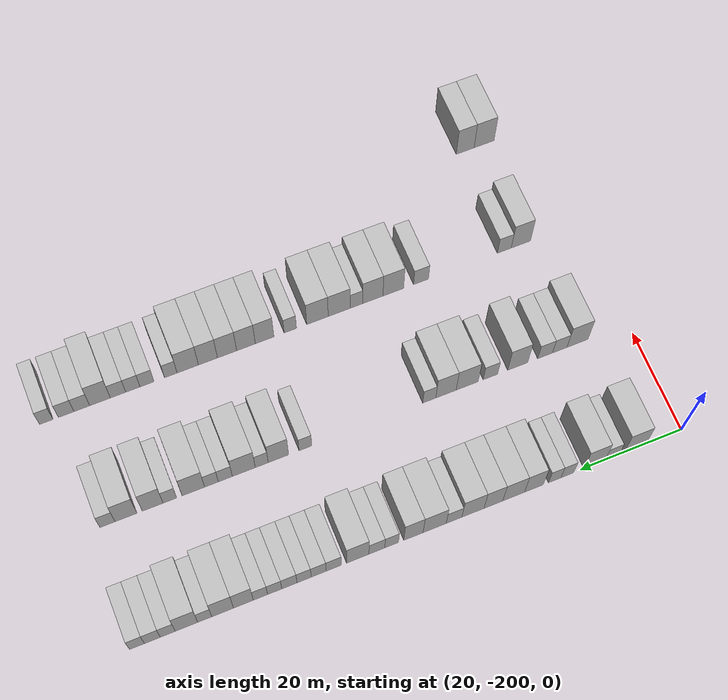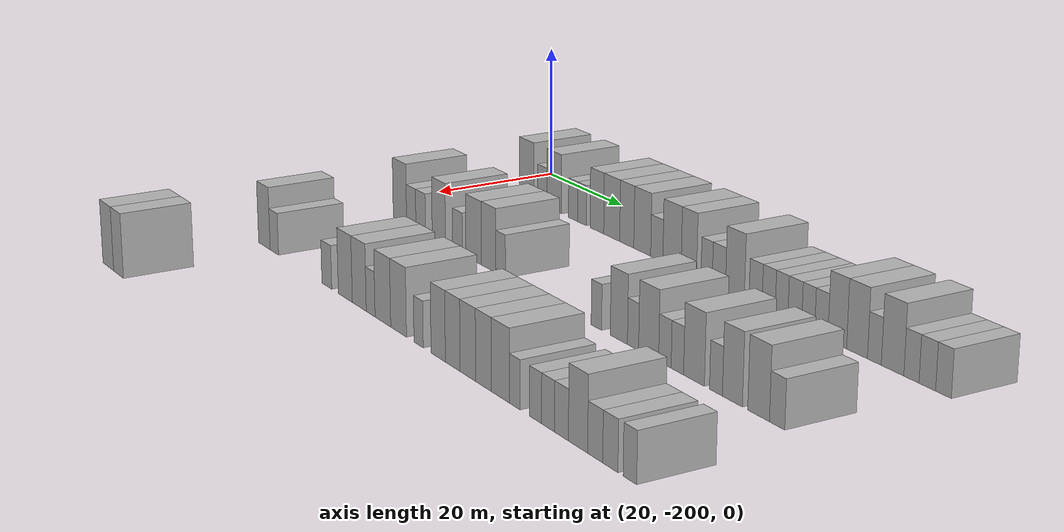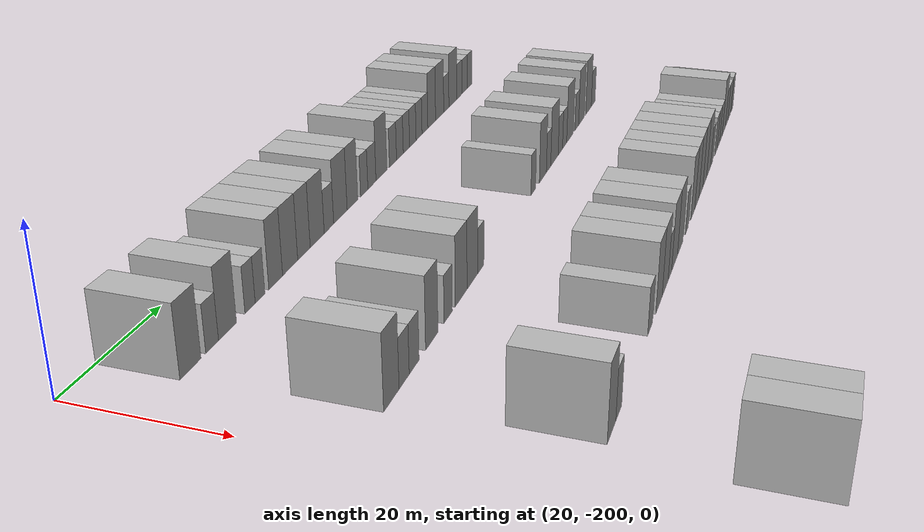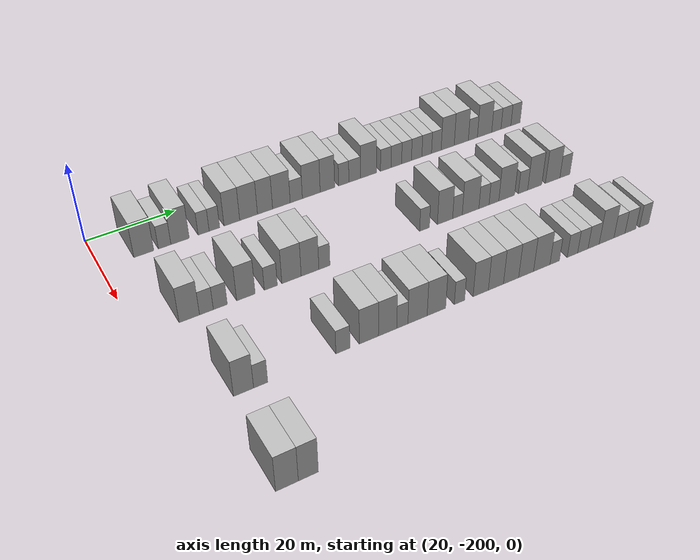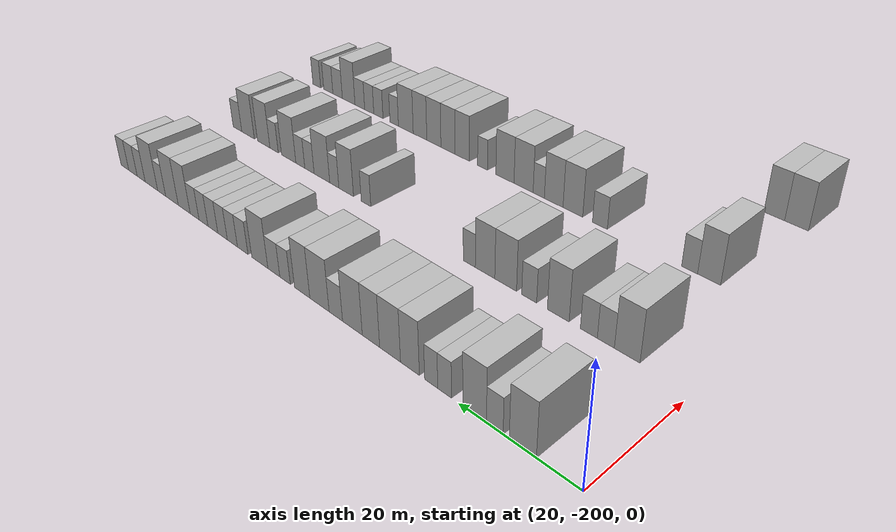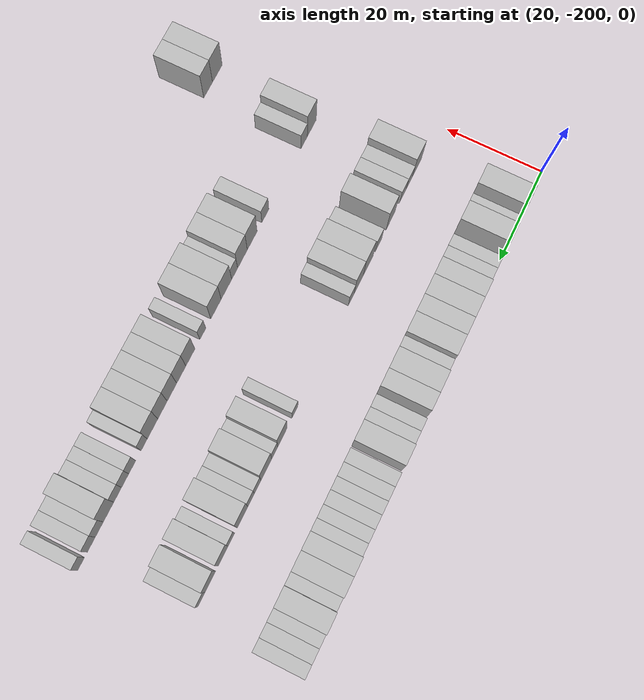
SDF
<sdf version="1.6">
 <world name="default">
  <model name="building_47">
   <static>1</static>
   <pose>25.0000 -190.7370 0 0.000000 0.000000 0.000000</pose>
   <link name="link">
    <pose>0 0 4.50 0 0 0</pose>
    <collision name="collision"><geometry><box><size>10.0000 4.3282 9.0000</size></box></geometry></collision>
    <visual name="visual">
     <cast_shadows>0</cast_shadows>
     <geometry><box><size>10.0000 4.3282 9.0000</size></box></geometry>
     <material>
      <script>
       <uri>model://HANNAS_wall/materials/scripts</uri>
       <uri>model://HANNAS_wall/materials/textures</uri>
       <name>vrc/HANNAS_wall</name>
      </script>
     </material>
    </visual>
   </link>
  </model>
  <model name="building_48">
   <static>1</static>
   <pose>25.0000 -186.1845 0 0.000000 0.000000 0.000000</pose>
   <link name="link">
    <pose>0 0 3.00 0 0 0</pose>
    <collision name="collision"><geometry><box><size>10.0000 2.7769 6.0000</size></box></geometry></collision>
    <visual name="visual">
     <cast_shadows>0</cast_shadows>
     <geometry><box><size>10.0000 2.7769 6.0000</size></box></geometry>
     <material>
      <script>
       <uri>model://HANNAS_wall/materials/scripts</uri>
       <uri>model://HANNAS_wall/materials/textures</uri>
       <name>vrc/HANNAS_wall</name>
      </script>
     </material>
    </visual>
   </link>
  </model>
  <model name="building_49">
   <static>1</static>
   <pose>25.0000 -182.7577 0 0.000000 0.000000 0.000000</pose>
   <link name="link">
    <pose>0 0 4.50 0 0 0</pose>
    <collision name="collision"><geometry><box><size>10.0000 4.0766 9.0000</size></box></geometry></collision>
    <visual name="visual">
     <cast_shadows>0</cast_shadows>
     <geometry><box><size>10.0000 4.0766 9.0000</size></box></geometry>
     <material>
      <script>
       <uri>model://HANNAS_wall/materials/scripts</uri>
       <uri>model://HANNAS_wall/materials/textures</uri>
       <name>vrc/HANNAS_wall</name>
      </script>
     </material>
    </visual>
   </link>
  </model>
  <model name="building_50">
   <static>1</static>
   <pose>25.0000 -177.4681 0 0.000000 0.000000 0.000000</pose>
   <link name="link">
    <pose>0 0 3.00 0 0 0</pose>
    <collision name="collision"><geometry><box><size>10.0000 2.5027 6.0000</size></box></geometry></collision>
    <visual name="visual">
     <cast_shadows>0</cast_shadows>
     <geometry><box><size>10.0000 2.5027 6.0000</size></box></geometry>
     <material>
      <script>
       <uri>model://HANNAS_wall/materials/scripts</uri>
       <uri>model://HANNAS_wall/materials/textures</uri>
       <name>vrc/HANNAS_wall</name>
      </script>
     </material>
    </visual>
   </link>
  </model>
  <model name="building_51">
   <static>1</static>
   <pose>25.0000 -175.0063 0 0.000000 0.000000 0.000000</pose>
   <link name="link">
    <pose>0 0 3.00 0 0 0</pose>
    <collision name="collision"><geometry><box><size>10.0000 2.4209 6.0000</size></box></geometry></collision>
    <visual name="visual">
     <cast_shadows>0</cast_shadows>
     <geometry><box><size>10.0000 2.4209 6.0000</size></box></geometry>
     <material>
      <script>
       <uri>model://HANNAS_wall/materials/scripts</uri>
       <uri>model://HANNAS_wall/materials/textures</uri>
       <name>vrc/HANNAS_wall</name>
      </script>
     </material>
    </visual>
   </link>
  </model>
  <model name="building_52">
   <static>1</static>
   <pose>25.0000 -170.9785 0 0.000000 0.000000 0.000000</pose>
   <link name="link">
    <pose>0 0 4.50 0 0 0</pose>
    <collision name="collision"><geometry><box><size>10.0000 3.6347 9.0000</size></box></geometry></collision>
    <visual name="visual">
     <cast_shadows>0</cast_shadows>
     <geometry><box><size>10.0000 3.6347 9.0000</size></box></geometry>
     <material>
      <script>
       <uri>model://HANNAS_wall/materials/scripts</uri>
       <uri>model://HANNAS_wall/materials/textures</uri>
       <name>vrc/HANNAS_wall</name>
      </script>
     </material>
    </visual>
   </link>
  </model>
  <model name="building_53">
   <static>1</static>
   <pose>25.0000 -167.0772 0 0.000000 0.000000 0.000000</pose>
   <link name="link">
    <pose>0 0 4.50 0 0 0</pose>
    <collision name="collision"><geometry><box><size>10.0000 4.1678 9.0000</size></box></geometry></collision>
    <visual name="visual">
     <cast_shadows>0</cast_shadows>
     <geometry><box><size>10.0000 4.1678 9.0000</size></box></geometry>
     <material>
      <script>
       <uri>model://HANNAS_wall/materials/scripts</uri>
       <uri>model://HANNAS_wall/materials/textures</uri>
       <name>vrc/HANNAS_wall</name>
      </script>
     </material>
    </visual>
   </link>
  </model>
  <model name="building_54">
   <static>1</static>
   <pose>25.0000 -163.1922 0 0.000000 0.000000 0.000000</pose>
   <link name="link">
    <pose>0 0 4.50 0 0 0</pose>
    <collision name="collision"><geometry><box><size>10.0000 3.6020 9.0000</size></box></geometry></collision>
    <visual name="visual">
     <cast_shadows>0</cast_shadows>
     <geometry><box><size>10.0000 3.6020 9.0000</size></box></geometry>
     <material>
      <script>
       <uri>model://HANNAS_wall/materials/scripts</uri>
       <uri>model://HANNAS_wall/materials/textures</uri>
       <name>vrc/HANNAS_wall</name>
      </script>
     </material>
    </visual>
   </link>
  </model>
  <model name="building_55">
   <static>1</static>
   <pose>25.0000 -159.2742 0 0.000000 0.000000 0.000000</pose>
   <link name="link">
    <pose>0 0 4.50 0 0 0</pose>
    <collision name="collision"><geometry><box><size>10.0000 4.2340 9.0000</size></box></geometry></collision>
    <visual name="visual">
     <cast_shadows>0</cast_shadows>
     <geometry><box><size>10.0000 4.2340 9.0000</size></box></geometry>
     <material>
      <script>
       <uri>model://HANNAS_wall/materials/scripts</uri>
       <uri>model://HANNAS_wall/materials/textures</uri>
       <name>vrc/HANNAS_wall</name>
      </script>
     </material>
    </visual>
   </link>
  </model>
  <model name="building_56">
   <static>1</static>
   <pose>25.0000 -155.6702 0 0.000000 0.000000 0.000000</pose>
   <link name="link">
    <pose>0 0 3.00 0 0 0</pose>
    <collision name="collision"><geometry><box><size>10.0000 2.9739 6.0000</size></box></geometry></collision>
    <visual name="visual">
     <cast_shadows>0</cast_shadows>
     <geometry><box><size>10.0000 2.9739 6.0000</size></box></geometry>
     <material>
      <script>
       <uri>model://HANNAS_wall/materials/scripts</uri>
       <uri>model://HANNAS_wall/materials/textures</uri>
       <name>vrc/HANNAS_wall</name>
      </script>
     </material>
    </visual>
   </link>
  </model>
  <model name="building_57">
   <static>1</static>
   <pose>25.0000 -151.9863 0 0.000000 0.000000 0.000000</pose>
   <link name="link">
    <pose>0 0 4.50 0 0 0</pose>
    <collision name="collision"><geometry><box><size>10.0000 4.3939 9.0000</size></box></geometry></collision>
    <visual name="visual">
     <cast_shadows>0</cast_shadows>
     <geometry><box><size>10.0000 4.3939 9.0000</size></box></geometry>
     <material>
      <script>
       <uri>model://HANNAS_wall/materials/scripts</uri>
       <uri>model://HANNAS_wall/materials/textures</uri>
       <name>vrc/HANNAS_wall</name>
      </script>
     </material>
    </visual>
   </link>
  </model>
  <model name="building_58">
   <static>1</static>
   <pose>25.0000 -147.9791 0 0.000000 0.000000 0.000000</pose>
   <link name="link">
    <pose>0 0 4.50 0 0 0</pose>
    <collision name="collision"><geometry><box><size>10.0000 3.6205 9.0000</size></box></geometry></collision>
    <visual name="visual">
     <cast_shadows>0</cast_shadows>
     <geometry><box><size>10.0000 3.6205 9.0000</size></box></geometry>
     <material>
      <script>
       <uri>model://HANNAS_wall/materials/scripts</uri>
       <uri>model://HANNAS_wall/materials/textures</uri>
       <name>vrc/HANNAS_wall</name>
      </script>
     </material>
    </visual>
   </link>
  </model>
  <model name="building_59">
   <static>1</static>
   <pose>25.0000 -143.8743 0 0.000000 0.000000 0.000000</pose>
   <link name="link">
    <pose>0 0 3.00 0 0 0</pose>
    <collision name="collision"><geometry><box><size>10.0000 2.5892 6.0000</size></box></geometry></collision>
    <visual name="visual">
     <cast_shadows>0</cast_shadows>
     <geometry><box><size>10.0000 2.5892 6.0000</size></box></geometry>
     <material>
      <script>
       <uri>model://HANNAS_wall/materials/scripts</uri>
       <uri>model://HANNAS_wall/materials/textures</uri>
       <name>vrc/HANNAS_wall</name>
      </script>
     </material>
    </visual>
   </link>
  </model>
  <model name="building_60">
   <static>1</static>
   <pose>25.0000 -141.0896 0 0.000000 0.000000 0.000000</pose>
   <link name="link">
    <pose>0 0 3.00 0 0 0</pose>
    <collision name="collision"><geometry><box><size>10.0000 2.9802 6.0000</size></box></geometry></collision>
    <visual name="visual">
     <cast_shadows>0</cast_shadows>
     <geometry><box><size>10.0000 2.9802 6.0000</size></box></geometry>
     <material>
      <script>
       <uri>model://HANNAS_wall/materials/scripts</uri>
       <uri>model://HANNAS_wall/materials/textures</uri>
       <name>vrc/HANNAS_wall</name>
      </script>
     </material>
    </visual>
   </link>
  </model>
  <model name="building_61">
   <static>1</static>
   <pose>25.0000 -137.5232 0 0.000000 0.000000 0.000000</pose>
   <link name="link">
    <pose>0 0 4.50 0 0 0</pose>
    <collision name="collision"><geometry><box><size>10.0000 4.1526 9.0000</size></box></geometry></collision>
    <visual name="visual">
     <cast_shadows>0</cast_shadows>
     <geometry><box><size>10.0000 4.1526 9.0000</size></box></geometry>
     <material>
      <script>
       <uri>model://HANNAS_wall/materials/scripts</uri>
       <uri>model://HANNAS_wall/materials/textures</uri>
       <name>vrc/HANNAS_wall</name>
      </script>
     </material>
    </visual>
   </link>
  </model>
  <model name="building_62">
   <static>1</static>
   <pose>25.0000 -133.0474 0 0.000000 0.000000 0.000000</pose>
   <link name="link">
    <pose>0 0 3.00 0 0 0</pose>
    <collision name="collision"><geometry><box><size>10.0000 2.7989 6.0000</size></box></geometry></collision>
    <visual name="visual">
     <cast_shadows>0</cast_shadows>
     <geometry><box><size>10.0000 2.7989 6.0000</size></box></geometry>
     <material>
      <script>
       <uri>model://HANNAS_wall/materials/scripts</uri>
       <uri>model://HANNAS_wall/materials/textures</uri>
       <name>vrc/HANNAS_wall</name>
      </script>
     </material>
    </visual>
   </link>
  </model>
  <model name="building_63">
   <static>1</static>
   <pose>25.0000 -130.2640 0 0.000000 0.000000 0.000000</pose>
   <link name="link">
    <pose>0 0 3.00 0 0 0</pose>
    <collision name="collision"><geometry><box><size>10.0000 2.7681 6.0000</size></box></geometry></collision>
    <visual name="visual">
     <cast_shadows>0</cast_shadows>
     <geometry><box><size>10.0000 2.7681 6.0000</size></box></geometry>
     <material>
      <script>
       <uri>model://HANNAS_wall/materials/scripts</uri>
       <uri>model://HANNAS_wall/materials/textures</uri>
       <name>vrc/HANNAS_wall</name>
      </script>
     </material>
    </visual>
   </link>
  </model>
  <model name="building_64">
   <static>1</static>
   <pose>25.0000 -127.5657 0 0.000000 0.000000 0.000000</pose>
   <link name="link">
    <pose>0 0 3.00 0 0 0</pose>
    <collision name="collision"><geometry><box><size>10.0000 2.6284 6.0000</size></box></geometry></collision>
    <visual name="visual">
     <cast_shadows>0</cast_shadows>
     <geometry><box><size>10.0000 2.6284 6.0000</size></box></geometry>
     <material>
      <script>
       <uri>model://HANNAS_wall/materials/scripts</uri>
       <uri>model://HANNAS_wall/materials/textures</uri>
       <name>vrc/HANNAS_wall</name>
      </script>
     </material>
    </visual>
   </link>
  </model>
  <model name="building_65">
   <static>1</static>
   <pose>25.0000 -124.8482 0 0.000000 0.000000 0.000000</pose>
   <link name="link">
    <pose>0 0 3.00 0 0 0</pose>
    <collision name="collision"><geometry><box><size>10.0000 2.8066 6.0000</size></box></geometry></collision>
    <visual name="visual">
     <cast_shadows>0</cast_shadows>
     <geometry><box><size>10.0000 2.8066 6.0000</size></box></geometry>
     <material>
      <script>
       <uri>model://HANNAS_wall/materials/scripts</uri>
       <uri>model://HANNAS_wall/materials/textures</uri>
       <name>vrc/HANNAS_wall</name>
      </script>
     </material>
    </visual>
   </link>
  </model>
  <model name="building_66">
   <static>1</static>
   <pose>25.0000 -122.1418 0 0.000000 0.000000 0.000000</pose>
   <link name="link">
    <pose>0 0 3.00 0 0 0</pose>
    <collision name="collision"><geometry><box><size>10.0000 2.6062 6.0000</size></box></geometry></collision>
    <visual name="visual">
     <cast_shadows>0</cast_shadows>
     <geometry><box><size>10.0000 2.6062 6.0000</size></box></geometry>
     <material>
      <script>
       <uri>model://HANNAS_wall/materials/scripts</uri>
       <uri>model://HANNAS_wall/materials/textures</uri>
       <name>vrc/HANNAS_wall</name>
      </script>
     </material>
    </visual>
   </link>
  </model>
  <model name="building_67">
   <static>1</static>
   <pose>25.0000 -119.5277 0 0.000000 0.000000 0.000000</pose>
   <link name="link">
    <pose>0 0 3.00 0 0 0</pose>
    <collision name="collision"><geometry><box><size>10.0000 2.6220 6.0000</size></box></geometry></collision>
    <visual name="visual">
     <cast_shadows>0</cast_shadows>
     <geometry><box><size>10.0000 2.6220 6.0000</size></box></geometry>
     <material>
      <script>
       <uri>model://HANNAS_wall/materials/scripts</uri>
       <uri>model://HANNAS_wall/materials/textures</uri>
       <name>vrc/HANNAS_wall</name>
      </script>
     </material>
    </visual>
   </link>
  </model>
  <model name="building_68">
   <static>1</static>
   <pose>25.0000 -116.4131 0 0.000000 0.000000 0.000000</pose>
   <link name="link">
    <pose>0 0 4.50 0 0 0</pose>
    <collision name="collision"><geometry><box><size>10.0000 3.6072 9.0000</size></box></geometry></collision>
    <visual name="visual">
     <cast_shadows>0</cast_shadows>
     <geometry><box><size>10.0000 3.6072 9.0000</size></box></geometry>
     <material>
      <script>
       <uri>model://HANNAS_wall/materials/scripts</uri>
       <uri>model://HANNAS_wall/materials/textures</uri>
       <name>vrc/HANNAS_wall</name>
      </script>
     </material>
    </visual>
   </link>
  </model>
  <model name="building_69">
   <static>1</static>
   <pose>25.0000 -112.6379 0 0.000000 0.000000 0.000000</pose>
   <link name="link">
    <pose>0 0 4.50 0 0 0</pose>
    <collision name="collision"><geometry><box><size>10.0000 3.9432 9.0000</size></box></geometry></collision>
    <visual name="visual">
     <cast_shadows>0</cast_shadows>
     <geometry><box><size>10.0000 3.9432 9.0000</size></box></geometry>
     <material>
      <script>
       <uri>model://HANNAS_wall/materials/scripts</uri>
       <uri>model://HANNAS_wall/materials/textures</uri>
       <name>vrc/HANNAS_wall</name>
      </script>
     </material>
    </visual>
   </link>
  </model>
  <model name="building_70">
   <static>1</static>
   <pose>25.0000 -109.3925 0 0.000000 0.000000 0.000000</pose>
   <link name="link">
    <pose>0 0 3.00 0 0 0</pose>
    <collision name="collision"><geometry><box><size>10.0000 2.5475 6.0000</size></box></geometry></collision>
    <visual name="visual">
     <cast_shadows>0</cast_shadows>
     <geometry><box><size>10.0000 2.5475 6.0000</size></box></geometry>
     <material>
      <script>
       <uri>model://HANNAS_wall/materials/scripts</uri>
       <uri>model://HANNAS_wall/materials/textures</uri>
       <name>vrc/HANNAS_wall</name>
      </script>
     </material>
    </visual>
   </link>
  </model>
  <model name="building_71">
   <static>1</static>
   <pose>25.0000 -106.0855 0 0.000000 0.000000 0.000000</pose>
   <link name="link">
    <pose>0 0 4.50 0 0 0</pose>
    <collision name="collision"><geometry><box><size>10.0000 4.0666 9.0000</size></box></geometry></collision>
    <visual name="visual">
     <cast_shadows>0</cast_shadows>
     <geometry><box><size>10.0000 4.0666 9.0000</size></box></geometry>
     <material>
      <script>
       <uri>model://HANNAS_wall/materials/scripts</uri>
       <uri>model://HANNAS_wall/materials/textures</uri>
       <name>vrc/HANNAS_wall</name>
      </script>
     </material>
    </visual>
   </link>
  </model>
  <model name="building_72">
   <static>1</static>
   <pose>25.0000 -102.7106 0 0.000000 0.000000 0.000000</pose>
   <link name="link">
    <pose>0 0 3.00 0 0 0</pose>
    <collision name="collision"><geometry><box><size>10.0000 2.6830 6.0000</size></box></geometry></collision>
    <visual name="visual">
     <cast_shadows>0</cast_shadows>
     <geometry><box><size>10.0000 2.6830 6.0000</size></box></geometry>
     <material>
      <script>
       <uri>model://HANNAS_wall/materials/scripts</uri>
       <uri>model://HANNAS_wall/materials/textures</uri>
       <name>vrc/HANNAS_wall</name>
      </script>
     </material>
    </visual>
   </link>
  </model>
  <model name="building_73">
   <static>1</static>
   <pose>25.0000 -99.9371 0 0.000000 0.000000 0.000000</pose>
   <link name="link">
    <pose>0 0 3.00 0 0 0</pose>
    <collision name="collision"><geometry><box><size>10.0000 2.8640 6.0000</size></box></geometry></collision>
    <visual name="visual">
     <cast_shadows>0</cast_shadows>
     <geometry><box><size>10.0000 2.8640 6.0000</size></box></geometry>
     <material>
      <script>
       <uri>model://HANNAS_wall/materials/scripts</uri>
       <uri>model://HANNAS_wall/materials/textures</uri>
       <name>vrc/HANNAS_wall</name>
      </script>
     </material>
    </visual>
   </link>
  </model>
  <model name="building_74">
   <static>1</static>
   <pose>25.0000 -97.1669 0 0.000000 0.000000 0.000000</pose>
   <link name="link">
    <pose>0 0 3.00 0 0 0</pose>
    <collision name="collision"><geometry><box><size>10.0000 2.6763 6.0000</size></box></geometry></collision>
    <visual name="visual">
     <cast_shadows>0</cast_shadows>
     <geometry><box><size>10.0000 2.6763 6.0000</size></box></geometry>
     <material>
      <script>
       <uri>model://HANNAS_wall/materials/scripts</uri>
       <uri>model://HANNAS_wall/materials/textures</uri>
       <name>vrc/HANNAS_wall</name>
      </script>
     </material>
    </visual>
   </link>
  </model>
  <model name="building_231">
   <static>1</static>
   <pose>47.0000 -189.7608 0 0.000000 0.000000 0.000000</pose>
   <link name="link">
    <pose>0 0 4.50 0 0 0</pose>
    <collision name="collision"><geometry><box><size>10.0000 4.2112 9.0000</size></box></geometry></collision>
    <visual name="visual">
     <cast_shadows>0</cast_shadows>
     <geometry><box><size>10.0000 4.2112 9.0000</size></box></geometry>
     <material>
      <script>
       <uri>model://HANNAS_wall/materials/scripts</uri>
       <uri>model://HANNAS_wall/materials/textures</uri>
       <name>vrc/HANNAS_wall</name>
      </script>
     </material>
    </visual>
   </link>
  </model>
  <model name="building_232">
   <static>1</static>
   <pose>47.0000 -186.2083 0 0.000000 0.000000 0.000000</pose>
   <link name="link">
    <pose>0 0 3.00 0 0 0</pose>
    <collision name="collision"><geometry><box><size>10.0000 2.8937 6.0000</size></box></geometry></collision>
    <visual name="visual">
     <cast_shadows>0</cast_shadows>
     <geometry><box><size>10.0000 2.8937 6.0000</size></box></geometry>
     <material>
      <script>
       <uri>model://HANNAS_wall/materials/scripts</uri>
       <uri>model://HANNAS_wall/materials/textures</uri>
       <name>vrc/HANNAS_wall</name>
      </script>
     </material>
    </visual>
   </link>
  </model>
  <model name="building_233">
   <static>1</static>
   <pose>47.0000 -183.2863 0 0.000000 0.000000 0.000000</pose>
   <link name="link">
    <pose>0 0 3.00 0 0 0</pose>
    <collision name="collision"><geometry><box><size>10.0000 2.9502 6.0000</size></box></geometry></collision>
    <visual name="visual">
     <cast_shadows>0</cast_shadows>
     <geometry><box><size>10.0000 2.9502 6.0000</size></box></geometry>
     <material>
      <script>
       <uri>model://HANNAS_wall/materials/scripts</uri>
       <uri>model://HANNAS_wall/materials/textures</uri>
       <name>vrc/HANNAS_wall</name>
      </script>
     </material>
    </visual>
   </link>
  </model>
  <model name="building_234">
   <static>1</static>
   <pose>47.0000 -177.8204 0 0.000000 0.000000 0.000000</pose>
   <link name="link">
    <pose>0 0 4.50 0 0 0</pose>
    <collision name="collision"><geometry><box><size>10.0000 3.9817 9.0000</size></box></geometry></collision>
    <visual name="visual">
     <cast_shadows>0</cast_shadows>
     <geometry><box><size>10.0000 3.9817 9.0000</size></box></geometry>
     <material>
      <script>
       <uri>model://HANNAS_wall/materials/scripts</uri>
       <uri>model://HANNAS_wall/materials/textures</uri>
       <name>vrc/HANNAS_wall</name>
      </script>
     </material>
    </visual>
   </link>
  </model>
  <model name="building_235">
   <static>1</static>
   <pose>47.0000 -172.3980 0 0.000000 0.000000 0.000000</pose>
   <link name="link">
    <pose>0 0 3.00 0 0 0</pose>
    <collision name="collision"><geometry><box><size>10.0000 2.8630 6.0000</size></box></geometry></collision>
    <visual name="visual">
     <cast_shadows>0</cast_shadows>
     <geometry><box><size>10.0000 2.8630 6.0000</size></box></geometry>
     <material>
      <script>
       <uri>model://HANNAS_wall/materials/scripts</uri>
       <uri>model://HANNAS_wall/materials/textures</uri>
       <name>vrc/HANNAS_wall</name>
      </script>
     </material>
    </visual>
   </link>
  </model>
  <model name="building_236">
   <static>1</static>
   <pose>47.0000 -167.8075 0 0.000000 0.000000 0.000000</pose>
   <link name="link">
    <pose>0 0 4.50 0 0 0</pose>
    <collision name="collision"><geometry><box><size>10.0000 4.3181 9.0000</size></box></geometry></collision>
    <visual name="visual">
     <cast_shadows>0</cast_shadows>
     <geometry><box><size>10.0000 4.3181 9.0000</size></box></geometry>
     <material>
      <script>
       <uri>model://HANNAS_wall/materials/scripts</uri>
       <uri>model://HANNAS_wall/materials/textures</uri>
       <name>vrc/HANNAS_wall</name>
      </script>
     </material>
    </visual>
   </link>
  </model>
  <model name="building_237">
   <static>1</static>
   <pose>47.0000 -163.6418 0 0.000000 0.000000 0.000000</pose>
   <link name="link">
    <pose>0 0 4.50 0 0 0</pose>
    <collision name="collision"><geometry><box><size>10.0000 4.0133 9.0000</size></box></geometry></collision>
    <visual name="visual">
     <cast_shadows>0</cast_shadows>
     <geometry><box><size>10.0000 4.0133 9.0000</size></box></geometry>
     <material>
      <script>
       <uri>model://HANNAS_wall/materials/scripts</uri>
       <uri>model://HANNAS_wall/materials/textures</uri>
       <name>vrc/HANNAS_wall</name>
      </script>
     </material>
    </visual>
   </link>
  </model>
  <model name="building_238">
   <static>1</static>
   <pose>47.0000 -160.3634 0 0.000000 0.000000 0.000000</pose>
   <link name="link">
    <pose>0 0 3.00 0 0 0</pose>
    <collision name="collision"><geometry><box><size>10.0000 2.5434 6.0000</size></box></geometry></collision>
    <visual name="visual">
     <cast_shadows>0</cast_shadows>
     <geometry><box><size>10.0000 2.5434 6.0000</size></box></geometry>
     <material>
      <script>
       <uri>model://HANNAS_wall/materials/scripts</uri>
       <uri>model://HANNAS_wall/materials/textures</uri>
       <name>vrc/HANNAS_wall</name>
      </script>
     </material>
    </visual>
   </link>
  </model>
  <model name="building_239">
   <static>1</static>
   <pose>47.0000 -136.4551 0 0.000000 0.000000 0.000000</pose>
   <link name="link">
    <pose>0 0 3.00 0 0 0</pose>
    <collision name="collision"><geometry><box><size>10.0000 2.4245 6.0000</size></box></geometry></collision>
    <visual name="visual">
     <cast_shadows>0</cast_shadows>
     <geometry><box><size>10.0000 2.4245 6.0000</size></box></geometry>
     <material>
      <script>
       <uri>model://HANNAS_wall/materials/scripts</uri>
       <uri>model://HANNAS_wall/materials/textures</uri>
       <name>vrc/HANNAS_wall</name>
      </script>
     </material>
    </visual>
   </link>
  </model>
  <model name="building_240">
   <static>1</static>
   <pose>47.0000 -131.3158 0 0.000000 0.000000 0.000000</pose>
   <link name="link">
    <pose>0 0 4.50 0 0 0</pose>
    <collision name="collision"><geometry><box><size>10.0000 3.8542 9.0000</size></box></geometry></collision>
    <visual name="visual">
     <cast_shadows>0</cast_shadows>
     <geometry><box><size>10.0000 3.8542 9.0000</size></box></geometry>
     <material>
      <script>
       <uri>model://HANNAS_wall/materials/scripts</uri>
       <uri>model://HANNAS_wall/materials/textures</uri>
       <name>vrc/HANNAS_wall</name>
      </script>
     </material>
    </visual>
   </link>
  </model>
  <model name="building_241">
   <static>1</static>
   <pose>47.0000 -128.1571 0 0.000000 0.000000 0.000000</pose>
   <link name="link">
    <pose>0 0 3.00 0 0 0</pose>
    <collision name="collision"><geometry><box><size>10.0000 2.4632 6.0000</size></box></geometry></collision>
    <visual name="visual">
     <cast_shadows>0</cast_shadows>
     <geometry><box><size>10.0000 2.4632 6.0000</size></box></geometry>
     <material>
      <script>
       <uri>model://HANNAS_wall/materials/scripts</uri>
       <uri>model://HANNAS_wall/materials/textures</uri>
       <name>vrc/HANNAS_wall</name>
      </script>
     </material>
    </visual>
   </link>
  </model>
  <model name="building_242">
   <static>1</static>
   <pose>47.0000 -124.7696 0 0.000000 0.000000 0.000000</pose>
   <link name="link">
    <pose>0 0 4.50 0 0 0</pose>
    <collision name="collision"><geometry><box><size>10.0000 4.3117 9.0000</size></box></geometry></collision>
    <visual name="visual">
     <cast_shadows>0</cast_shadows>
     <geometry><box><size>10.0000 4.3117 9.0000</size></box></geometry>
     <material>
      <script>
       <uri>model://HANNAS_wall/materials/scripts</uri>
       <uri>model://HANNAS_wall/materials/textures</uri>
       <name>vrc/HANNAS_wall</name>
      </script>
     </material>
    </visual>
   </link>
  </model>
  <model name="building_243">
   <static>1</static>
   <pose>47.0000 -121.2923 0 0.000000 0.000000 0.000000</pose>
   <link name="link">
    <pose>0 0 3.00 0 0 0</pose>
    <collision name="collision"><geometry><box><size>10.0000 2.6430 6.0000</size></box></geometry></collision>
    <visual name="visual">
     <cast_shadows>0</cast_shadows>
     <geometry><box><size>10.0000 2.6430 6.0000</size></box></geometry>
     <material>
      <script>
       <uri>model://HANNAS_wall/materials/scripts</uri>
       <uri>model://HANNAS_wall/materials/textures</uri>
       <name>vrc/HANNAS_wall</name>
      </script>
     </material>
    </visual>
   </link>
  </model>
  <model name="building_244">
   <static>1</static>
   <pose>47.0000 -118.6808 0 0.000000 0.000000 0.000000</pose>
   <link name="link">
    <pose>0 0 3.00 0 0 0</pose>
    <collision name="collision"><geometry><box><size>10.0000 2.5802 6.0000</size></box></geometry></collision>
    <visual name="visual">
     <cast_shadows>0</cast_shadows>
     <geometry><box><size>10.0000 2.5802 6.0000</size></box></geometry>
     <material>
      <script>
       <uri>model://HANNAS_wall/materials/scripts</uri>
       <uri>model://HANNAS_wall/materials/textures</uri>
       <name>vrc/HANNAS_wall</name>
      </script>
     </material>
    </visual>
   </link>
  </model>
  <model name="building_245">
   <static>1</static>
   <pose>47.0000 -115.2855 0 0.000000 0.000000 0.000000</pose>
   <link name="link">
    <pose>0 0 4.50 0 0 0</pose>
    <collision name="collision"><geometry><box><size>10.0000 4.2104 9.0000</size></box></geometry></collision>
    <visual name="visual">
     <cast_shadows>0</cast_shadows>
     <geometry><box><size>10.0000 4.2104 9.0000</size></box></geometry>
     <material>
      <script>
       <uri>model://HANNAS_wall/materials/scripts</uri>
       <uri>model://HANNAS_wall/materials/textures</uri>
       <name>vrc/HANNAS_wall</name>
      </script>
     </material>
    </visual>
   </link>
  </model>
  <model name="building_246">
   <static>1</static>
   <pose>47.0000 -110.9138 0 0.000000 0.000000 0.000000</pose>
   <link name="link">
    <pose>0 0 3.00 0 0 0</pose>
    <collision name="collision"><geometry><box><size>10.0000 2.5329 6.0000</size></box></geometry></collision>
    <visual name="visual">
     <cast_shadows>0</cast_shadows>
     <geometry><box><size>10.0000 2.5329 6.0000</size></box></geometry>
     <material>
      <script>
       <uri>model://HANNAS_wall/materials/scripts</uri>
       <uri>model://HANNAS_wall/materials/textures</uri>
       <name>vrc/HANNAS_wall</name>
      </script>
     </material>
    </visual>
   </link>
  </model>
  <model name="building_247">
   <static>1</static>
   <pose>47.0000 -107.7214 0 0.000000 0.000000 0.000000</pose>
   <link name="link">
    <pose>0 0 4.50 0 0 0</pose>
    <collision name="collision"><geometry><box><size>10.0000 3.8519 9.0000</size></box></geometry></collision>
    <visual name="visual">
     <cast_shadows>0</cast_shadows>
     <geometry><box><size>10.0000 3.8519 9.0000</size></box></geometry>
     <material>
      <script>
       <uri>model://HANNAS_wall/materials/scripts</uri>
       <uri>model://HANNAS_wall/materials/textures</uri>
       <name>vrc/HANNAS_wall</name>
      </script>
     </material>
    </visual>
   </link>
  </model>
  <model name="building_248">
   <static>1</static>
   <pose>47.0000 -102.7804 0 0.000000 0.000000 0.000000</pose>
   <link name="link">
    <pose>0 0 4.50 0 0 0</pose>
    <collision name="collision"><geometry><box><size>10.0000 4.0302 9.0000</size></box></geometry></collision>
    <visual name="visual">
     <cast_shadows>0</cast_shadows>
     <geometry><box><size>10.0000 4.0302 9.0000</size></box></geometry>
     <material>
      <script>
       <uri>model://HANNAS_wall/materials/scripts</uri>
       <uri>model://HANNAS_wall/materials/textures</uri>
       <name>vrc/HANNAS_wall</name>
      </script>
     </material>
    </visual>
   </link>
  </model>
  <model name="building_249">
   <static>1</static>
   <pose>47.0000 -99.3705 0 0.000000 0.000000 0.000000</pose>
   <link name="link">
    <pose>0 0 3.00 0 0 0</pose>
    <collision name="collision"><geometry><box><size>10.0000 2.7897 6.0000</size></box></geometry></collision>
    <visual name="visual">
     <cast_shadows>0</cast_shadows>
     <geometry><box><size>10.0000 2.7897 6.0000</size></box></geometry>
     <material>
      <script>
       <uri>model://HANNAS_wall/materials/scripts</uri>
       <uri>model://HANNAS_wall/materials/textures</uri>
       <name>vrc/HANNAS_wall</name>
      </script>
     </material>
    </visual>
   </link>
  </model>
  <model name="building_417">
   <static>1</static>
   <pose>69.0000 -188.3951 0 0.000000 0.000000 0.000000</pose>
   <link name="link">
    <pose>0 0 4.50 0 0 0</pose>
    <collision name="collision"><geometry><box><size>10.0000 3.9523 9.0000</size></box></geometry></collision>
    <visual name="visual">
     <cast_shadows>0</cast_shadows>
     <geometry><box><size>10.0000 3.9523 9.0000</size></box></geometry>
     <material>
      <script>
       <uri>model://HANNAS_wall/materials/scripts</uri>
       <uri>model://HANNAS_wall/materials/textures</uri>
       <name>vrc/HANNAS_wall</name>
      </script>
     </material>
    </visual>
   </link>
  </model>
  <model name="building_418">
   <static>1</static>
   <pose>69.0000 -185.0111 0 0.000000 0.000000 0.000000</pose>
   <link name="link">
    <pose>0 0 3.00 0 0 0</pose>
    <collision name="collision"><geometry><box><size>10.0000 2.8157 6.0000</size></box></geometry></collision>
    <visual name="visual">
     <cast_shadows>0</cast_shadows>
     <geometry><box><size>10.0000 2.8157 6.0000</size></box></geometry>
     <material>
      <script>
       <uri>model://HANNAS_wall/materials/scripts</uri>
       <uri>model://HANNAS_wall/materials/textures</uri>
       <name>vrc/HANNAS_wall</name>
      </script>
     </material>
    </visual>
   </link>
  </model>
  <model name="building_419">
   <static>1</static>
   <pose>69.0000 -168.1042 0 0.000000 0.000000 0.000000</pose>
   <link name="link">
    <pose>0 0 3.00 0 0 0</pose>
    <collision name="collision"><geometry><box><size>10.0000 2.9993 6.0000</size></box></geometry></collision>
    <visual name="visual">
     <cast_shadows>0</cast_shadows>
     <geometry><box><size>10.0000 2.9993 6.0000</size></box></geometry>
     <material>
      <script>
       <uri>model://HANNAS_wall/materials/scripts</uri>
       <uri>model://HANNAS_wall/materials/textures</uri>
       <name>vrc/HANNAS_wall</name>
      </script>
     </material>
    </visual>
   </link>
  </model>
  <model name="building_420">
   <static>1</static>
   <pose>69.0000 -162.5317 0 0.000000 0.000000 0.000000</pose>
   <link name="link">
    <pose>0 0 4.50 0 0 0</pose>
    <collision name="collision"><geometry><box><size>10.0000 4.1457 9.0000</size></box></geometry></collision>
    <visual name="visual">
     <cast_shadows>0</cast_shadows>
     <geometry><box><size>10.0000 4.1457 9.0000</size></box></geometry>
     <material>
      <script>
       <uri>model://HANNAS_wall/materials/scripts</uri>
       <uri>model://HANNAS_wall/materials/textures</uri>
       <name>vrc/HANNAS_wall</name>
      </script>
     </material>
    </visual>
   </link>
  </model>
  <model name="building_421">
   <static>1</static>
   <pose>69.0000 -158.4445 0 0.000000 0.000000 0.000000</pose>
   <link name="link">
    <pose>0 0 4.50 0 0 0</pose>
    <collision name="collision"><geometry><box><size>10.0000 4.0285 9.0000</size></box></geometry></collision>
    <visual name="visual">
     <cast_shadows>0</cast_shadows>
     <geometry><box><size>10.0000 4.0285 9.0000</size></box></geometry>
     <material>
      <script>
       <uri>model://HANNAS_wall/materials/scripts</uri>
       <uri>model://HANNAS_wall/materials/textures</uri>
       <name>vrc/HANNAS_wall</name>
      </script>
     </material>
    </visual>
   </link>
  </model>
  <model name="building_422">
   <static>1</static>
   <pose>69.0000 -155.1824 0 0.000000 0.000000 0.000000</pose>
   <link name="link">
    <pose>0 0 3.00 0 0 0</pose>
    <collision name="collision"><geometry><box><size>10.0000 2.4957 6.0000</size></box></geometry></collision>
    <visual name="visual">
     <cast_shadows>0</cast_shadows>
     <geometry><box><size>10.0000 2.4957 6.0000</size></box></geometry>
     <material>
      <script>
       <uri>model://HANNAS_wall/materials/scripts</uri>
       <uri>model://HANNAS_wall/materials/textures</uri>
       <name>vrc/HANNAS_wall</name>
      </script>
     </material>
    </visual>
   </link>
  </model>
  <model name="building_423">
   <static>1</static>
   <pose>69.0000 -151.7629 0 0.000000 0.000000 0.000000</pose>
   <link name="link">
    <pose>0 0 4.50 0 0 0</pose>
    <collision name="collision"><geometry><box><size>10.0000 4.3432 9.0000</size></box></geometry></collision>
    <visual name="visual">
     <cast_shadows>0</cast_shadows>
     <geometry><box><size>10.0000 4.3432 9.0000</size></box></geometry>
     <material>
      <script>
       <uri>model://HANNAS_wall/materials/scripts</uri>
       <uri>model://HANNAS_wall/materials/textures</uri>
       <name>vrc/HANNAS_wall</name>
      </script>
     </material>
    </visual>
   </link>
  </model>
  <model name="building_424">
   <static>1</static>
   <pose>69.0000 -147.4674 0 0.000000 0.000000 0.000000</pose>
   <link name="link">
    <pose>0 0 4.50 0 0 0</pose>
    <collision name="collision"><geometry><box><size>10.0000 4.2477 9.0000</size></box></geometry></collision>
    <visual name="visual">
     <cast_shadows>0</cast_shadows>
     <geometry><box><size>10.0000 4.2477 9.0000</size></box></geometry>
     <material>
      <script>
       <uri>model://HANNAS_wall/materials/scripts</uri>
       <uri>model://HANNAS_wall/materials/textures</uri>
       <name>vrc/HANNAS_wall</name>
      </script>
     </material>
    </visual>
   </link>
  </model>
  <model name="building_425">
   <static>1</static>
   <pose>69.0000 -142.1324 0 0.000000 0.000000 0.000000</pose>
   <link name="link">
    <pose>0 0 3.00 0 0 0</pose>
    <collision name="collision"><geometry><box><size>10.0000 2.4223 6.0000</size></box></geometry></collision>
    <visual name="visual">
     <cast_shadows>0</cast_shadows>
     <geometry><box><size>10.0000 2.4223 6.0000</size></box></geometry>
     <material>
      <script>
       <uri>model://HANNAS_wall/materials/scripts</uri>
       <uri>model://HANNAS_wall/materials/textures</uri>
       <name>vrc/HANNAS_wall</name>
      </script>
     </material>
    </visual>
   </link>
  </model>
  <model name="building_426">
   <static>1</static>
   <pose>69.0000 -137.1084 0 0.000000 0.000000 0.000000</pose>
   <link name="link">
    <pose>0 0 4.50 0 0 0</pose>
    <collision name="collision"><geometry><box><size>10.0000 3.6257 9.0000</size></box></geometry></collision>
    <visual name="visual">
     <cast_shadows>0</cast_shadows>
     <geometry><box><size>10.0000 3.6257 9.0000</size></box></geometry>
     <material>
      <script>
       <uri>model://HANNAS_wall/materials/scripts</uri>
       <uri>model://HANNAS_wall/materials/textures</uri>
       <name>vrc/HANNAS_wall</name>
      </script>
     </material>
    </visual>
   </link>
  </model>
  <model name="building_427">
   <static>1</static>
   <pose>69.0000 -133.4769 0 0.000000 0.000000 0.000000</pose>
   <link name="link">
    <pose>0 0 4.50 0 0 0</pose>
    <collision name="collision"><geometry><box><size>10.0000 3.6374 9.0000</size></box></geometry></collision>
    <visual name="visual">
     <cast_shadows>0</cast_shadows>
     <geometry><box><size>10.0000 3.6374 9.0000</size></box></geometry>
     <material>
      <script>
       <uri>model://HANNAS_wall/materials/scripts</uri>
       <uri>model://HANNAS_wall/materials/textures</uri>
       <name>vrc/HANNAS_wall</name>
      </script>
     </material>
    </visual>
   </link>
  </model>
  <model name="building_428">
   <static>1</static>
   <pose>69.0000 -129.7931 0 0.000000 0.000000 0.000000</pose>
   <link name="link">
    <pose>0 0 4.50 0 0 0</pose>
    <collision name="collision"><geometry><box><size>10.0000 3.7301 9.0000</size></box></geometry></collision>
    <visual name="visual">
     <cast_shadows>0</cast_shadows>
     <geometry><box><size>10.0000 3.7301 9.0000</size></box></geometry>
     <material>
      <script>
       <uri>model://HANNAS_wall/materials/scripts</uri>
       <uri>model://HANNAS_wall/materials/textures</uri>
       <name>vrc/HANNAS_wall</name>
      </script>
     </material>
    </visual>
   </link>
  </model>
  <model name="building_429">
   <static>1</static>
   <pose>69.0000 -126.0884 0 0.000000 0.000000 0.000000</pose>
   <link name="link">
    <pose>0 0 4.50 0 0 0</pose>
    <collision name="collision"><geometry><box><size>10.0000 3.6792 9.0000</size></box></geometry></collision>
    <visual name="visual">
     <cast_shadows>0</cast_shadows>
     <geometry><box><size>10.0000 3.6792 9.0000</size></box></geometry>
     <material>
      <script>
       <uri>model://HANNAS_wall/materials/scripts</uri>
       <uri>model://HANNAS_wall/materials/textures</uri>
       <name>vrc/HANNAS_wall</name>
      </script>
     </material>
    </visual>
   </link>
  </model>
  <model name="building_430">
   <static>1</static>
   <pose>69.0000 -122.1936 0 0.000000 0.000000 0.000000</pose>
   <link name="link">
    <pose>0 0 4.50 0 0 0</pose>
    <collision name="collision"><geometry><box><size>10.0000 4.1104 9.0000</size></box></geometry></collision>
    <visual name="visual">
     <cast_shadows>0</cast_shadows>
     <geometry><box><size>10.0000 4.1104 9.0000</size></box></geometry>
     <material>
      <script>
       <uri>model://HANNAS_wall/materials/scripts</uri>
       <uri>model://HANNAS_wall/materials/textures</uri>
       <name>vrc/HANNAS_wall</name>
      </script>
     </material>
    </visual>
   </link>
  </model>
  <model name="building_431">
   <static>1</static>
   <pose>69.0000 -118.9354 0 0.000000 0.000000 0.000000</pose>
   <link name="link">
    <pose>0 0 3.00 0 0 0</pose>
    <collision name="collision"><geometry><box><size>10.0000 2.4061 6.0000</size></box></geometry></collision>
    <visual name="visual">
     <cast_shadows>0</cast_shadows>
     <geometry><box><size>10.0000 2.4061 6.0000</size></box></geometry>
     <material>
      <script>
       <uri>model://HANNAS_wall/materials/scripts</uri>
       <uri>model://HANNAS_wall/materials/textures</uri>
       <name>vrc/HANNAS_wall</name>
      </script>
     </material>
    </visual>
   </link>
  </model>
  <model name="building_432">
   <static>1</static>
   <pose>69.0000 -114.3918 0 0.000000 0.000000 0.000000</pose>
   <link name="link">
    <pose>0 0 3.00 0 0 0</pose>
    <collision name="collision"><geometry><box><size>10.0000 2.6811 6.0000</size></box></geometry></collision>
    <visual name="visual">
     <cast_shadows>0</cast_shadows>
     <geometry><box><size>10.0000 2.6811 6.0000</size></box></geometry>
     <material>
      <script>
       <uri>model://HANNAS_wall/materials/scripts</uri>
       <uri>model://HANNAS_wall/materials/textures</uri>
       <name>vrc/HANNAS_wall</name>
      </script>
     </material>
    </visual>
   </link>
  </model>
  <model name="building_433">
   <static>1</static>
   <pose>69.0000 -111.6926 0 0.000000 0.000000 0.000000</pose>
   <link name="link">
    <pose>0 0 3.00 0 0 0</pose>
    <collision name="collision"><geometry><box><size>10.0000 2.7172 6.0000</size></box></geometry></collision>
    <visual name="visual">
     <cast_shadows>0</cast_shadows>
     <geometry><box><size>10.0000 2.7172 6.0000</size></box></geometry>
     <material>
      <script>
       <uri>model://HANNAS_wall/materials/scripts</uri>
       <uri>model://HANNAS_wall/materials/textures</uri>
       <name>vrc/HANNAS_wall</name>
      </script>
     </material>
    </visual>
   </link>
  </model>
  <model name="building_434">
   <static>1</static>
   <pose>69.0000 -108.8718 0 0.000000 0.000000 0.000000</pose>
   <link name="link">
    <pose>0 0 3.00 0 0 0</pose>
    <collision name="collision"><geometry><box><size>10.0000 2.9245 6.0000</size></box></geometry></collision>
    <visual name="visual">
     <cast_shadows>0</cast_shadows>
     <geometry><box><size>10.0000 2.9245 6.0000</size></box></geometry>
     <material>
      <script>
       <uri>model://HANNAS_wall/materials/scripts</uri>
       <uri>model://HANNAS_wall/materials/textures</uri>
       <name>vrc/HANNAS_wall</name>
      </script>
     </material>
    </visual>
   </link>
  </model>
  <model name="building_435">
   <static>1</static>
   <pose>69.0000 -105.4568 0 0.000000 0.000000 0.000000</pose>
   <link name="link">
    <pose>0 0 4.50 0 0 0</pose>
    <collision name="collision"><geometry><box><size>10.0000 3.9054 9.0000</size></box></geometry></collision>
    <visual name="visual">
     <cast_shadows>0</cast_shadows>
     <geometry><box><size>10.0000 3.9054 9.0000</size></box></geometry>
     <material>
      <script>
       <uri>model://HANNAS_wall/materials/scripts</uri>
       <uri>model://HANNAS_wall/materials/textures</uri>
       <name>vrc/HANNAS_wall</name>
      </script>
     </material>
    </visual>
   </link>
  </model>
  <model name="building_436">
   <static>1</static>
   <pose>69.0000 -102.0136 0 0.000000 0.000000 0.000000</pose>
   <link name="link">
    <pose>0 0 3.00 0 0 0</pose>
    <collision name="collision"><geometry><box><size>10.0000 2.9811 6.0000</size></box></geometry></collision>
    <visual name="visual">
     <cast_shadows>0</cast_shadows>
     <geometry><box><size>10.0000 2.9811 6.0000</size></box></geometry>
     <material>
      <script>
       <uri>model://HANNAS_wall/materials/scripts</uri>
       <uri>model://HANNAS_wall/materials/textures</uri>
       <name>vrc/HANNAS_wall</name>
      </script>
     </material>
    </visual>
   </link>
  </model>
  <model name="building_437">
   <static>1</static>
   <pose>69.0000 -99.0538 0 0.000000 0.000000 0.000000</pose>
   <link name="link">
    <pose>0 0 3.00 0 0 0</pose>
    <collision name="collision"><geometry><box><size>10.0000 2.9383 6.0000</size></box></geometry></collision>
    <visual name="visual">
     <cast_shadows>0</cast_shadows>
     <geometry><box><size>10.0000 2.9383 6.0000</size></box></geometry>
     <material>
      <script>
       <uri>model://HANNAS_wall/materials/scripts</uri>
       <uri>model://HANNAS_wall/materials/textures</uri>
       <name>vrc/HANNAS_wall</name>
      </script>
     </material>
    </visual>
   </link>
  </model>
  <model name="building_438">
   <static>1</static>
   <pose>69.0000 -95.3193 0 0.000000 0.000000 0.000000</pose>
   <link name="link">
    <pose>0 0 3.00 0 0 0</pose>
    <collision name="collision"><geometry><box><size>10.0000 2.5307 6.0000</size></box></geometry></collision>
    <visual name="visual">
     <cast_shadows>0</cast_shadows>
     <geometry><box><size>10.0000 2.5307 6.0000</size></box></geometry>
     <material>
      <script>
       <uri>model://HANNAS_wall/materials/scripts</uri>
       <uri>model://HANNAS_wall/materials/textures</uri>
       <name>vrc/HANNAS_wall</name>
      </script>
     </material>
    </visual>
   </link>
  </model>
  <model name="building_604">
   <static>1</static>
   <pose>91.0000 -190.6166 0 0.000000 0.000000 0.000000</pose>
   <link name="link">
    <pose>0 0 4.50 0 0 0</pose>
    <collision name="collision"><geometry><box><size>10.0000 4.1863 9.0000</size></box></geometry></collision>
    <visual name="visual">
     <cast_shadows>0</cast_shadows>
     <geometry><box><size>10.0000 4.1863 9.0000</size></box></geometry>
     <material>
      <script>
       <uri>model://HANNAS_wall/materials/scripts</uri>
       <uri>model://HANNAS_wall/materials/textures</uri>
       <name>vrc/HANNAS_wall</name>
      </script>
     </material>
    </visual>
   </link>
  </model>
  <model name="building_605">
   <static>1</static>
   <pose>91.0000 -186.6532 0 0.000000 0.000000 0.000000</pose>
   <link name="link">
    <pose>0 0 4.50 0 0 0</pose>
    <collision name="collision"><geometry><box><size>10.0000 3.7405 9.0000</size></box></geometry></collision>
    <visual name="visual">
     <cast_shadows>0</cast_shadows>
     <geometry><box><size>10.0000 3.7405 9.0000</size></box></geometry>
     <material>
      <script>
       <uri>model://HANNAS_wall/materials/scripts</uri>
       <uri>model://HANNAS_wall/materials/textures</uri>
       <name>vrc/HANNAS_wall</name>
      </script>
     </material>
    </visual>
   </link>
  </model>
 </world>
</sdf>
